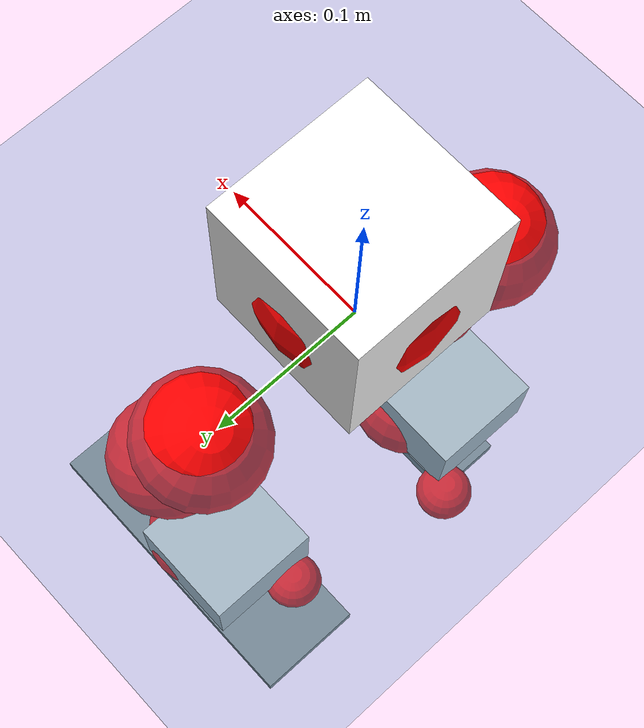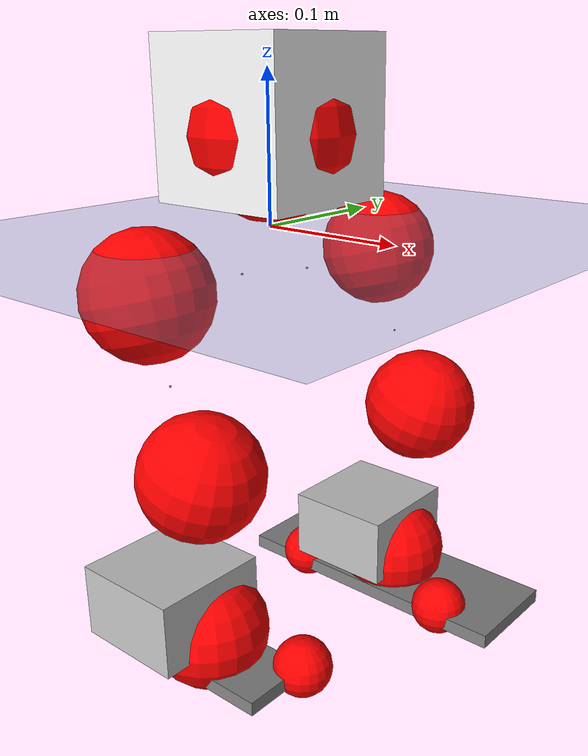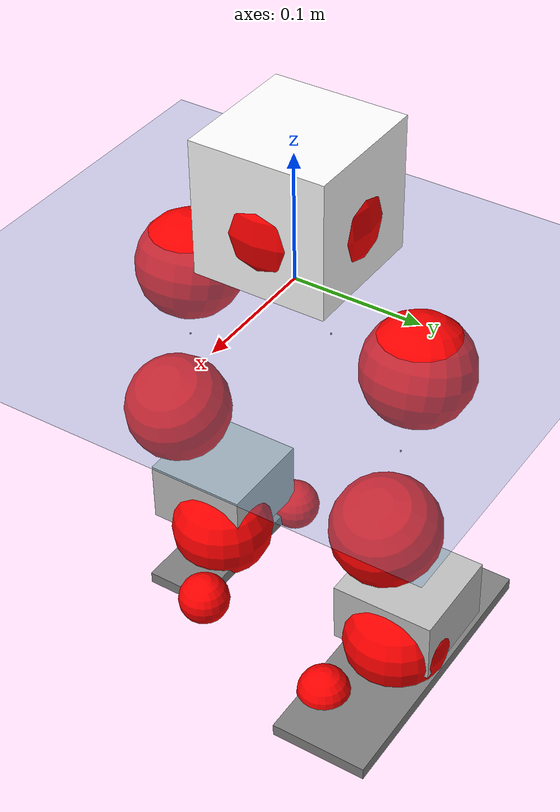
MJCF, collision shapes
<mujoco model="pi_12dof_release_v1">
  <compiler angle="radian" assetdir="assets" balanceinertia="true" inertiafromgeom="false"/>

  <option timestep="0.005" density="1.2" viscosity="2e-05"/>

  <size nkey="1"/>

  <visual>
    <quality shadowsize="8192"/>
    <map shadowclip="0.5"/>
  </visual>

  <default>
    <default class="/">
      <joint armature="0.01" damping="0.01" frictionloss="0.01"/>
      <geom contype="0" conaffinity="0" group="1" solref="-1000 -80"/>
      <site size="0.01 0.005 0.005" group="5"/>
      <general forcelimited="true" biastype="affine" gainprm="20" biasprm="0 -20 -0.5"/>
      <default class="foot">
        <geom size="0.0845 0.036 0.005" type="box" condim="6" group="4" priority="1" friction="0.9 0.2 0.2" solimp="0.015 1 0.005"/>
      </default>
      <default class="reward_collision_sphere">
        <geom group="5" rgba="1 0 0 1"/>
      </default>
    </default>
  </default>

  <asset>
    <texture type="skybox" colorspace="auto" name="//unnamed_texture_0" builtin="gradient" rgb1="0.95 0.95 0.95" rgb2="0.95 0.95 0.95" width="100" height="600"/>
    <texture type="2d" colorspace="auto" name="texplane" builtin="checker" rgb1="0.345 0.575 0.748" rgb2="0.345 0.575 0.748" markrgb="1 1 1" width="512" height="512"/>
    <material name="MatPlane" class="/" texture="texplane" texuniform="true" texrepeat="2 2" specular="0.9"/>
    <mesh name="baselink_1" class="/" file="baselink_1.STL"/>
    <mesh name="r_hip_pitch_link" class="/" file="r_hip_pitch_link.STL"/>
    <mesh name="r_hip_roll_link" class="/" file="r_hip_roll_link.STL"/>
    <mesh name="r_thigh_link" class="/" file="r_thigh_link.STL"/>
    <mesh name="r_calf_link" class="/" file="r_calf_link.STL"/>
    <mesh name="r_ankle_pitch_link" class="/" file="r_ankle_pitch_link.STL"/>
    <mesh name="r_ankle_roll_link" class="/" file="r_ankle_roll_link.STL"/>
    <mesh name="l_hip_pitch_link" class="/" file="l_hip_pitch_link.STL"/>
    <mesh name="l_hip_roll_link" class="/" file="l_hip_roll_link.STL"/>
    <mesh name="l_thigh_link" class="/" file="l_thigh_link.STL"/>
    <mesh name="l_calf_link" class="/" file="l_calf_link.STL"/>
    <mesh name="l_ankle_pitch_link" class="/" file="l_ankle_pitch_link.STL"/>
    <mesh name="l_ankle_roll_link" class="/" file="l_ankle_roll_link.STL"/>
  </asset>

  <worldbody>
    <geom name="floor" class="/" size="100 100 0.125" type="plane" group="0" material="MatPlane"/>
    <light name="toplight_shadow" class="/" pos="0 0 5" dir="0.0990148 0.0990148 -0.990148" type="directional" ambient="0.04 0.04 0.04" diffuse="0.55 0.55 0.55" specular="0.12 0.12 0.12"/>
    <light name="toplight_fill" class="/" pos="0 0 5" dir="0.0990148 0.0990148 -0.990148" type="directional" castshadow="false" ambient="0.04 0.04 0.04" diffuse="0.3 0.3 0.3" specular="0.08 0.08 0.08"/>
    <body name="trunk" pos="-0.000987224 0.00319469 -0.000670002" quat="0.999999 0.000836374 -0.00134826 -0.000355292">
      <inertial pos="0.00447095 0.00761919 0.0312487" quat="0.698204 0.0179993 0.0078074 0.71563" mass="2.47818" diaginertia="0.00995036 0.0333538 0.00201316"/>
      <joint name="//unnamed_joint_0" type="free"/>
      <geom name="//unnamed_geom_1" class="/" type="mesh" density="0" rgba="1 1 1 1" mesh="baselink_1"/>
      <geom name="//unnamed_geom_2" class="/" size="0.0517492 0.0517492 0.0517492" pos="0 0 0.0688396" type="box" rgba="1 1 1 1"/>
      <geom name="//unnamed_geom_3" class="reward_collision_sphere" size="0.0569241" pos="0 0 0.0602346"/>
      <site name="imu" class="/" pos="-0.0107541 0.00977209 0.00974172" size="0.0103498"/>
      <camera name="track" class="/" pos="0 -2.5549 0" quat="0.707107 0.707107 0 0" mode="trackcom"/>
      <camera name="ego_camera" class="/" pos="0.0725254 0 0.154889" quat="-0.5 -0.5 0.5 0.5"/>
      <body name="r_hip_pitch_link" pos="-0.00331635 -0.0268655 -0.0276324" quat="0.992174 -0.000206294 -0.124865 0.00012049">
        <inertial pos="0.00210578 -0.0655696 0.0038877" quat="-0.0135271 0.699211 -0.0732478 0.711025" mass="0.425915" diaginertia="9.12945e-05 0.000344415 3.90739e-05"/>
        <joint name="r_hip_pitch_joint" class="/" pos="0 0 0" axis="-0.00136702 -0.999902 -0.0139633" range="-1.80147 1.20852" armature="0.00918313" damping="0" frictionloss="0.00669318"/>
        <geom name="//unnamed_geom_4" class="/" type="mesh" density="0" rgba="0.75294 0.75294 0.75294 1" mesh="r_hip_pitch_link"/>
        <geom name="//unnamed_geom_5" class="/" size="0.000517492 0.000517492 0.000517492" type="box" rgba="0.75294 0.75294 0.75294 1"/>
        <body name="r_hip_roll_link" pos="-0.00579171 -0.073745 0.000862089" quat="0.999991 0.00273005 0.000291833 -0.00321768">
          <inertial pos="0.00138866 -0.00888086 -0.0556045" quat="0.70685 -0.0786528 -0.0823926 0.698132" mass="0.424851" diaginertia="0.000306321 0.00085991 6.11483e-05"/>
          <joint name="r_hip_roll_joint" class="/" pos="0 0 0" axis="-0.999971 0.0075598 -0.000864562" stiffness="0.00956826" range="-0.10774 0.462747" armature="0.00768795" damping="0" frictionloss="0.00923539"/>
          <geom name="//unnamed_geom_6" class="/" type="mesh" density="0" rgba="0.75294 0.75294 0.75294 1" mesh="r_hip_roll_link"/>
          <geom name="//unnamed_geom_7" class="/" size="0.000517492 0.000517492 0.000517492" type="box" rgba="0.75294 0.75294 0.75294 1"/>
          <geom name="//unnamed_geom_8" class="reward_collision_sphere" size="0.0413993"/>
          <body name="r_thigh_link" pos="-0.00389442 0.00351493 -0.0570624" quat="0.999998 -0.00146195 -0.000638579 -0.00070061">
            <inertial pos="0.00649662 0.00436149 -0.0360811" quat="0.736904 0.675998 9.69185e-05 0.000609888" mass="0.129796" diaginertia="0.000108378 0.00030433 2.75046e-05"/>
            <joint name="r_thigh_joint" class="/" pos="0 0 0" axis="-0.00528973 -0.0288167 -0.999571" stiffness="0.0337917" range="-0.14663 0.748283" armature="0.00735921" damping="0.0470491" frictionloss="0.00645878"/>
            <geom name="//unnamed_geom_9" class="/" type="mesh" density="0" rgba="0.75294 0.75294 0.75294 1" mesh="r_thigh_link"/>
            <geom name="//unnamed_geom_10" class="/" size="0.000517492 0.000517492 0.000517492" type="box" rgba="0.75294 0.75294 0.75294 1"/>
            <body name="r_calf_link" pos="0.00791495 0.00157144 -0.0588223" quat="0.947828 -0.000256014 0.318781 -0.000361907">
              <inertial pos="-0.00314113 -0.00151042 -0.0589417" quat="0.999588 -0.00901245 0.00323227 -0.0270432" mass="0.916061" diaginertia="0.00315967 0.0118918 8.38301e-05"/>
              <joint name="r_calf_joint" class="/" pos="0 0 0" axis="0.0364641 -0.999072 0.0229104" stiffness="0.0123486" range="-1.61763 0.609638" armature="0.0097718" damping="0.0053191" frictionloss="0.00689355"/>
              <geom name="//unnamed_geom_11" class="/" type="mesh" density="0" rgba="0.75294 0.75294 0.75294 1" mesh="r_calf_link"/>
              <geom name="//unnamed_geom_12" class="/" size="0.000517492 0.000517492 0.000517492" type="box" rgba="0.75294 0.75294 0.75294 1"/>
              <geom name="//unnamed_geom_13" class="reward_collision_sphere" size="0.0413993"/>
              <body name="r_ankle_pitch_link" pos="0.000402099 0.00691451 -0.114732" quat="0.980097 0.000163106 -0.198522 6.16768e-05">
                <inertial pos="0.00300609 0.00741706 -0.00695794" quat="0.00318376 0.707034 -0.00209913 0.707169" mass="0.198674" diaginertia="0.000272643 0.000760441 5.69416e-05"/>
                <joint name="r_ankle_pitch_joint" class="/" pos="0 0 0" axis="0.0080938 -0.999966 -0.00125733" stiffness="0.000936747" range="-1.23229 0.639357" armature="0.00775959" damping="0.0140502" frictionloss="0.00712332"/>
                <geom name="//unnamed_geom_14" class="/" type="mesh" density="0" rgba="0.75294 0.75294 0.75294 1" mesh="r_ankle_pitch_link"/>
                <geom name="//unnamed_geom_15" class="/" size="0.0403644 0.0413993 0.0258746" type="box" rgba="0.75294 0.75294 0.75294 1"/>
                <body name="r_ankle_roll_link" pos="0.0701786 0.0129926 -0.00652794" quat="1 -0.000628455 -2.85338e-05 0.000237597">
                  <inertial pos="-0.0205357 -0.00274681 -0.0105331" quat="0.560338 0.4315 0.435256 0.557119" mass="0.517218" diaginertia="0.000859738 0.00300257 0.000123532"/>
                  <joint name="r_ankle_roll_joint" class="/" pos="0 0 0" axis="-0.998913 -0.0235596 -0.0402323" range="-0.31949 0.0553899" armature="0.00913948" damping="0" frictionloss="0.0106688"/>
                  <geom name="//unnamed_geom_16" class="/" type="mesh" density="0" rgba="0.75294 0.75294 0.75294 1" mesh="r_ankle_roll_link"/>
                  <geom name="//unnamed_geom_17" class="/" type="mesh" rgba="0.75294 0.75294 0.75294 1" mesh="r_ankle_roll_link"/>
                  <geom name="right_foot" class="foot" size="0.0650891 0.0254026 0.00488719" pos="-0.0493173 0 -0.0378618"/>
                  <geom name="//unnamed_geom_19" class="reward_collision_sphere" size="0.0413993" pos="-0.0483503 0 -0.0172099"/>
                  <geom name="//unnamed_geom_20" class="reward_collision_sphere" size="0.0206997" pos="0.0145051 0.025549 -0.0344198"/>
                  <geom name="//unnamed_geom_21" class="reward_collision_sphere" size="0.0206997" pos="-0.116041 0.025549 -0.0344198"/>
                  <site name="right_foot" class="foot" pos="-0.0493173 0 -0.0378618" size="0.0103498"/>
                </body>
              </body>
            </body>
          </body>
        </body>
      </body>
      <body name="l_hip_pitch_link" pos="0.00444528 0.0287551 -0.0322662" quat="0.992303 0.000473311 -0.123827 -0.00067262">
        <inertial pos="0.00286296 0.067574 -0.00266343" quat="-0.0320231 0.707635 0.028712 0.705268" mass="0.47935" diaginertia="0.000106385 0.000364111 4.63932e-05"/>
        <joint name="l_hip_pitch_joint" class="/" pos="0 0 0" axis="0.00125081 0.999999 -0.000626456" range="-1.19273 1.63673" armature="0.00974702" damping="0.0266775" frictionloss="0.0100786"/>
        <geom name="//unnamed_geom_22" class="/" type="mesh" density="0" rgba="0.75294 0.75294 0.75294 1" mesh="l_hip_pitch_link"/>
        <geom name="//unnamed_geom_23" class="/" size="0.000517492 0.000517492 0.000517492" type="box" rgba="0.75294 0.75294 0.75294 1"/>
        <body name="l_hip_roll_link" pos="0.00688224 0.0737496 0.00179093" quat="0.999994 0.0020612 -0.00186387 -0.00210171">
          <inertial pos="0.00391527 -0.0087505 -0.0524071" quat="0.697884 -0.0888922 -0.0948972 0.704309" mass="0.476681" diaginertia="0.000290498 0.000927259 5.63928e-05"/>
          <joint name="l_hip_roll_joint" class="/" pos="0 0 0" axis="-0.999834 0.0181889 0.00145702" range="-0.524171 0.116858" armature="0.00626717" damping="0.00568607" frictionloss="0.0113576"/>
          <geom name="//unnamed_geom_24" class="/" type="mesh" density="0" rgba="0.75294 0.75294 0.75294 1" mesh="l_hip_roll_link"/>
          <geom name="//unnamed_geom_25" class="/" size="0.000517492 0.000517492 0.000517492" type="box" rgba="0.75294 0.75294 0.75294 1"/>
          <geom name="//unnamed_geom_26" class="reward_collision_sphere" size="0.0413993"/>
          <body name="l_thigh_link" pos="0.001769 -0.00168291 -0.063218" quat="1 0.000475404 0.000790467 9.9048e-05">
            <inertial pos="0.00237827 -0.00666554 -0.0446925" quat="0.669396 0.74288 0.00030583 -0.00613844" mass="0.126855" diaginertia="0.000113354 0.000346384 2.95915e-05"/>
            <joint name="l_thigh_joint" class="/" pos="0 0 0" axis="0.00449351 0.00201613 -0.999988" range="-0.595842 0.313225" armature="0.0113967" damping="0.0324716" frictionloss="0.010599"/>
            <geom name="//unnamed_geom_27" class="/" type="mesh" density="0" rgba="0.75294 0.75294 0.75294 1" mesh="l_thigh_link"/>
            <geom name="//unnamed_geom_28" class="/" size="0.000517492 0.000517492 0.000517492" type="box" rgba="0.75294 0.75294 0.75294 1"/>
            <body name="l_calf_link" pos="0.00809309 0.00292954 -0.0591702" quat="0.946232 -8.76178e-05 0.323487 0.000374425">
              <inertial pos="0.00276642 0.00380649 -0.0639127" quat="0.999989 0.00202263 -0.00286864 0.00323819" mass="0.924883" diaginertia="0.00302171 0.0122083 7.42536e-05"/>
              <joint name="l_calf_joint" class="/" pos="0 0 0" axis="-0.00672182 0.999941 -0.00857306" stiffness="0.0412613" range="-0.761427 1.64846" armature="0.0106893" damping="0.0127825" frictionloss="0.0108382"/>
              <geom name="//unnamed_geom_29" class="/" type="mesh" density="0" rgba="0.75294 0.75294 0.75294 1" mesh="l_calf_link"/>
              <geom name="//unnamed_geom_30" class="/" size="0.000517492 0.000517492 0.000517492" type="box" rgba="0.75294 0.75294 0.75294 1"/>
              <geom name="//unnamed_geom_31" class="reward_collision_sphere" size="0.0413993"/>
              <body name="l_ankle_pitch_link" pos="0.00341955 -0.00439455 -0.120031" quat="0.9801 5.01859e-05 -0.198507 -5.63054e-05">
                <inertial pos="0.0041519 0.00312657 -0.00320422" quat="0.00486183 0.707515 -0.00497147 0.706664" mass="0.200482" diaginertia="0.000257728 0.000759971 5.97362e-05"/>
                <joint name="l_ankle_pitch_joint" class="/" pos="0 0 0" axis="0.00766154 0.999942 0.00753549" range="-0.563231 1.28611" armature="0.0133309" damping="0" frictionloss="0.0117141"/>
                <geom name="//unnamed_geom_32" class="/" type="mesh" density="0" rgba="0.75294 0.75294 0.75294 1" mesh="l_ankle_pitch_link"/>
                <geom name="//unnamed_geom_33" class="/" size="0.0403644 0.0413993 0.0258746" type="box" rgba="0.75294 0.75294 0.75294 1"/>
                <body name="l_ankle_roll_link" pos="0.0705642 0.00322377 -0.00090981" quat="1 -0.0007259 0.000157322 -8.55844e-05">
                  <inertial pos="-0.0212575 0.00122089 -0.0151716" quat="0.561321 0.430482 0.431194 0.560068" mass="0.547508" diaginertia="0.000959595 0.0034259 0.000128949"/>
                  <joint name="l_ankle_roll_joint" class="/" pos="0 0 0" axis="-0.999984 0.00181584 0.00531066" stiffness="0.00181891" range="-0.311521 0.172265" armature="0.00938587" damping="0.0419856" frictionloss="0.0103085"/>
                  <geom name="//unnamed_geom_34" class="/" type="mesh" density="0" rgba="0.75294 0.75294 0.75294 1" mesh="l_ankle_roll_link"/>
                  <geom name="//unnamed_geom_35" class="/" type="mesh" rgba="0.75294 0.75294 0.75294 1" mesh="l_ankle_roll_link"/>
                  <geom name="left_foot" class="foot" size="0.113007 0.0388367 0.00516629" pos="-0.0493173 0 -0.0378618"/>
                  <geom name="//unnamed_geom_37" class="reward_collision_sphere" size="0.0413993" pos="-0.0483503 0 -0.0172099"/>
                  <geom name="//unnamed_geom_38" class="reward_collision_sphere" size="0.0206997" pos="0.0145051 -0.025549 -0.0344198"/>
                  <geom name="//unnamed_geom_39" class="reward_collision_sphere" size="0.0206997" pos="-0.116041 -0.025549 -0.0344198"/>
                  <site name="left_foot" class="foot" pos="-0.0493173 0 -0.0378618" size="0.0103498"/>
                </body>
              </body>
            </body>
          </body>
        </body>
      </body>
    </body>
  </worldbody>

  <contact>
    <pair class="/" geom1="floor" geom2="right_foot" name="//unnamed_contact_1"/>
    <pair class="/" geom1="floor" geom2="left_foot" name="//unnamed_contact_0"/>
  </contact>

  <actuator>
    <general name="r_hip_pitch_joint" class="/" joint="r_hip_pitch_joint" forcerange="-22.0928 22.0928" gainprm="21.261" biasprm="0 -21.261 -0.540417"/>
    <general name="r_hip_roll_joint" class="/" joint="r_hip_roll_joint" forcerange="-14.9781 14.9781" gainprm="21.261" biasprm="0 -21.261 -0.540417"/>
    <general name="r_thigh_joint" class="/" joint="r_thigh_joint" forcerange="-21.5944 21.5944" gainprm="21.261" biasprm="0 -21.261 -0.540417"/>
    <general name="r_calf_joint" class="/" joint="r_calf_joint" forcerange="-23.2914 23.2914" gainprm="21.261" biasprm="0 -21.261 -0.540417"/>
    <general name="r_ankle_pitch_joint" class="/" joint="r_ankle_pitch_joint" forcerange="-21.7861 21.7861" gainprm="21.261" biasprm="0 -21.261 -0.540417"/>
    <general name="r_ankle_roll_joint" class="/" joint="r_ankle_roll_joint" forcerange="-18.1074 18.1074" gainprm="21.261" biasprm="0 -21.261 -0.540417"/>
    <general name="l_hip_pitch_joint" class="/" joint="l_hip_pitch_joint" forcerange="-21.0091 21.0091" gainprm="21.261" biasprm="0 -21.261 -0.540417"/>
    <general name="l_hip_roll_joint" class="/" joint="l_hip_roll_joint" forcerange="-21.8177 21.8177" gainprm="21.261" biasprm="0 -21.261 -0.540417"/>
    <general name="l_thigh_joint" class="/" joint="l_thigh_joint" forcerange="-23.1283 23.1283" gainprm="21.261" biasprm="0 -21.261 -0.540417"/>
    <general name="l_calf_joint" class="/" joint="l_calf_joint" forcerange="-22.9289 22.9289" gainprm="21.261" biasprm="0 -21.261 -0.540417"/>
    <general name="l_ankle_pitch_joint" class="/" joint="l_ankle_pitch_joint" forcerange="-20.3043 20.3043" gainprm="21.261" biasprm="0 -21.261 -0.540417"/>
    <general name="l_ankle_roll_joint" class="/" joint="l_ankle_roll_joint" forcerange="-24.9647 24.9647" gainprm="21.261" biasprm="0 -21.261 -0.540417"/>
  </actuator>

  <sensor>
    <gyro site="imu" name="imu_angular_velocity"/>
    <velocimeter site="imu" name="imu_linear_velocity"/>
    <framelinvel objtype="site" objname="left_foot" name="left_foot_global_linear_velocity"/>
    <framelinvel objtype="site" objname="right_foot" name="right_foot_global_linear_velocity"/>
  </sensor>

  <keyframe>
    <key name="home" qpos="0 0 0.291 1 0 0 0 0.4 0 0 -0.8 0.4 0 -0.4 0 0 0.8 -0.4 0"/>
  </keyframe>
</mujoco>
